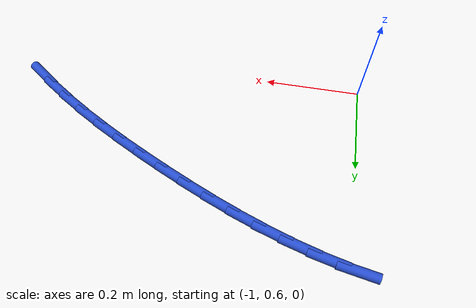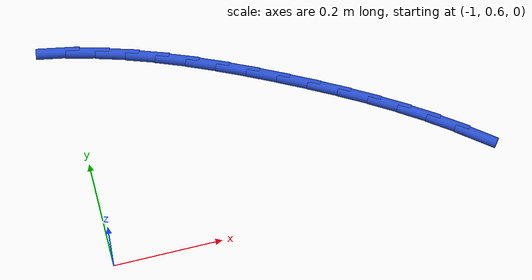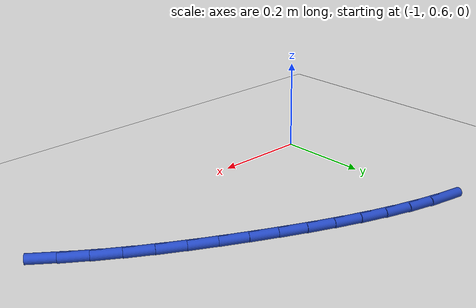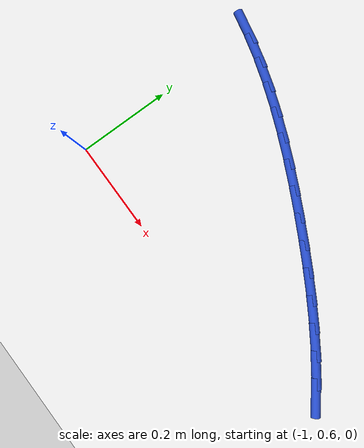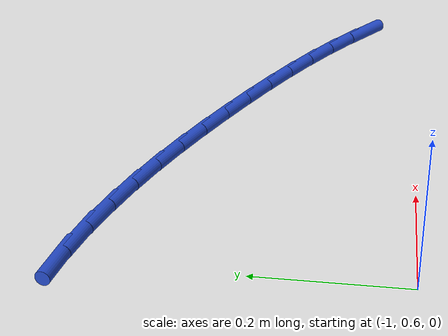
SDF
<sdf version="1.6">
 <world name="default">
  <model name="ground_plane">
   <static>1</static>
   <link name="link">
    <collision name="collision">
     <geometry><plane><normal>0 0 1</normal><size>100 100</size></plane></geometry>
     <surface><friction><ode><mu>100</mu><mu2>50</mu2></ode></friction></surface>
    </collision>
    <visual name="visual">
     <cast_shadows>0</cast_shadows>
     <geometry><plane><normal>0 0 1</normal><size>100 100</size></plane></geometry>
     <material>
      <script><uri>file://media/materials/scripts/gazebo.material</uri><name>Gazebo/WhiteGlow</name></script>
     </material>
    </visual>
   </link>
  </model>
  <model name="line">
   <link name="link_14">
    <pose>-0.30518138305275033 0.6830687983675829 0.01 0 1.57 -0.6526564523827201</pose>
    <collision name="collision">
     <geometry><cylinder><radius>0.01</radius><length>0.08</length></cylinder></geometry>
    </collision>
    <visual name="visual">
     <material>
      <script><name>Gazebo/Blue</name><uri>file://media/materials/scripts/gazebo.material</uri></script>
     </material>
     <geometry><cylinder><radius>0.01</radius><length>0.08</length></cylinder></geometry>
    </visual>
   </link>
   <link name="link_15">
    <pose>-0.34940106830369466 0.7168705263397483 0.01 0 1.57 -0.6076955482859591</pose>
    <collision name="collision">
     <geometry><cylinder><radius>0.01</radius><length>0.08</length></cylinder></geometry>
    </collision>
    <visual name="visual">
     <material>
      <script><name>Gazebo/Blue</name><uri>file://media/materials/scripts/gazebo.material</uri></script>
     </material>
     <geometry><cylinder><radius>0.01</radius><length>0.08</length></cylinder></geometry>
    </visual>
   </link>
   <link name="link_16">
    <pose>-0.39549481357789207 0.7489284599532043 0.01 0 1.57 -0.5687929075984257</pose>
    <collision name="collision">
     <geometry><cylinder><radius>0.01</radius><length>0.08</length></cylinder></geometry>
    </collision>
    <visual name="visual">
     <material>
      <script><name>Gazebo/Blue</name><uri>file://media/materials/scripts/gazebo.material</uri></script>
     </material>
     <geometry><cylinder><radius>0.01</radius><length>0.08</length></cylinder></geometry>
    </visual>
   </link>
   <link name="link_17">
    <pose>-0.4431634369998135 0.77940143080798 0.01 0 1.57 -0.5356019927911092</pose>
    <collision name="collision">
     <geometry><cylinder><radius>0.01</radius><length>0.08</length></cylinder></geometry>
    </collision>
    <visual name="visual">
     <material>
      <script><name>Gazebo/Blue</name><uri>file://media/materials/scripts/gazebo.material</uri></script>
     </material>
     <geometry><cylinder><radius>0.01</radius><length>0.08</length></cylinder></geometry>
    </visual>
   </link>
   <link name="link_18">
    <pose>-0.4921077566939298 0.8084482705041043 0.01 0 1.57 -0.5077984382076199</pose>
    <collision name="collision">
     <geometry><cylinder><radius>0.01</radius><length>0.08</length></cylinder></geometry>
    </collision>
    <visual name="visual">
     <material>
      <script><name>Gazebo/Blue</name><uri>file://media/materials/scripts/gazebo.material</uri></script>
     </material>
     <geometry><cylinder><radius>0.01</radius><length>0.08</length></cylinder></geometry>
    </visual>
   </link>
   <link name="link_19">
    <pose>-0.5420285907847125 0.8362278106416071 0.01 0 1.57 -0.48510387177198394</pose>
    <collision name="collision">
     <geometry><cylinder><radius>0.01</radius><length>0.08</length></cylinder></geometry>
    </collision>
    <visual name="visual">
     <material>
      <script><name>Gazebo/Blue</name><uri>file://media/materials/scripts/gazebo.material</uri></script>
     </material>
     <geometry><cylinder><radius>0.01</radius><length>0.08</length></cylinder></geometry>
    </visual>
   </link>
   <link name="link_20">
    <pose>-0.5926267573966325 0.8628988828205177 0.01 0 1.57 -0.46711844504468836</pose>
    <collision name="collision">
     <geometry><cylinder><radius>0.01</radius><length>0.08</length></cylinder></geometry>
    </collision>
    <visual name="visual">
     <material>
      <script><name>Gazebo/Blue</name><uri>file://media/materials/scripts/gazebo.material</uri></script>
     </material>
     <geometry><cylinder><radius>0.01</radius><length>0.08</length></cylinder></geometry>
    </visual>
   </link>
   <link name="link_21">
    <pose>-0.6436093031377588 0.8886117311786362 0.01 0 1.57 -0.44927430398723267</pose>
    <collision name="collision">
     <geometry><cylinder><radius>0.01</radius><length>0.08</length></cylinder></geometry>
    </collision>
    <visual name="visual">
     <material>
      <script><name>Gazebo/Blue</name><uri>file://media/materials/scripts/gazebo.material</uri></script>
     </material>
     <geometry><cylinder><radius>0.01</radius><length>0.08</length></cylinder></geometry>
    </visual>
   </link>
   <link name="link_22">
    <pose>-0.6948332153523238 0.9133098704969109 0.01 0 1.57 -0.4268974794492113</pose>
    <collision name="collision">
     <geometry><cylinder><radius>0.01</radius><length>0.08</length></cylinder></geometry>
    </collision>
    <visual name="visual">
     <material>
      <script><name>Gazebo/Blue</name><uri>file://media/materials/scripts/gazebo.material</uri></script>
     </material>
     <geometry><cylinder><radius>0.01</radius><length>0.08</length></cylinder></geometry>
    </visual>
   </link>
   <link name="link_23">
    <pose>-0.7463092331742149 0.9367248317458615 0.01 0 1.57 -0.39960449038210455</pose>
    <collision name="collision">
     <geometry><cylinder><radius>0.01</radius><length>0.08</length></cylinder></geometry>
    </collision>
    <visual name="visual">
     <material>
      <script><name>Gazebo/Blue</name><uri>file://media/materials/scripts/gazebo.material</uri></script>
     </material>
     <geometry><cylinder><radius>0.01</radius><length>0.08</length></cylinder></geometry>
    </visual>
   </link>
   <link name="link_24">
    <pose>-0.7980550865821467 0.9585785073355207 0.01 0 1.57 -0.36719775580357766</pose>
    <collision name="collision">
     <geometry><cylinder><radius>0.01</radius><length>0.08</length></cylinder></geometry>
    </collision>
    <visual name="visual">
     <material>
      <script><name>Gazebo/Blue</name><uri>file://media/materials/scripts/gazebo.material</uri></script>
     </material>
     <geometry><cylinder><radius>0.01</radius><length>0.08</length></cylinder></geometry>
    </visual>
   </link>
   <link name="link_25">
    <pose>-0.8500885055548336 0.9785927896759217 0.01 0 1.57 -0.32947784547290543</pose>
    <collision name="collision">
     <geometry><cylinder><radius>0.01</radius><length>0.08</length></cylinder></geometry>
    </collision>
    <visual name="visual">
     <material>
      <script><name>Gazebo/Blue</name><uri>file://media/materials/scripts/gazebo.material</uri></script>
     </material>
     <geometry><cylinder><radius>0.01</radius><length>0.08</length></cylinder></geometry>
    </visual>
   </link>
   <link name="link_26">
    <pose>-0.90242722007099 0.9964895711770976 0.01 0 1.57 -0.28626860013012795</pose>
    <collision name="collision">
     <geometry><cylinder><radius>0.01</radius><length>0.08</length></cylinder></geometry>
    </collision>
    <visual name="visual">
     <material>
      <script><name>Gazebo/Blue</name><uri>file://media/materials/scripts/gazebo.material</uri></script>
     </material>
     <geometry><cylinder><radius>0.01</radius><length>0.08</length></cylinder></geometry>
    </visual>
   </link>
   <link name="link_27">
    <pose>-0.9550889601093301 1.0119907442490816 0.01 0 1.57 -0.23745040023343833</pose>
    <collision name="collision">
     <geometry><cylinder><radius>0.01</radius><length>0.08</length></cylinder></geometry>
    </collision>
    <visual name="visual">
     <material>
      <script><name>Gazebo/Blue</name><uri>file://media/materials/scripts/gazebo.material</uri></script>
     </material>
     <geometry><cylinder><radius>0.01</radius><length>0.08</length></cylinder></geometry>
    </visual>
   </link>
   <link name="link_28">
    <pose>-1.0080914556485685 1.0248182013019067 0.01 0 1.57 -0.18300156323919167</pose>
    <collision name="collision">
     <geometry><cylinder><radius>0.01</radius><length>0.08</length></cylinder></geometry>
    </collision>
    <visual name="visual">
     <material>
      <script><name>Gazebo/Blue</name><uri>file://media/materials/scripts/gazebo.material</uri></script>
     </material>
     <geometry><cylinder><radius>0.01</radius><length>0.08</length></cylinder></geometry>
    </visual>
   </link>
  </model>
 </world>
</sdf>
